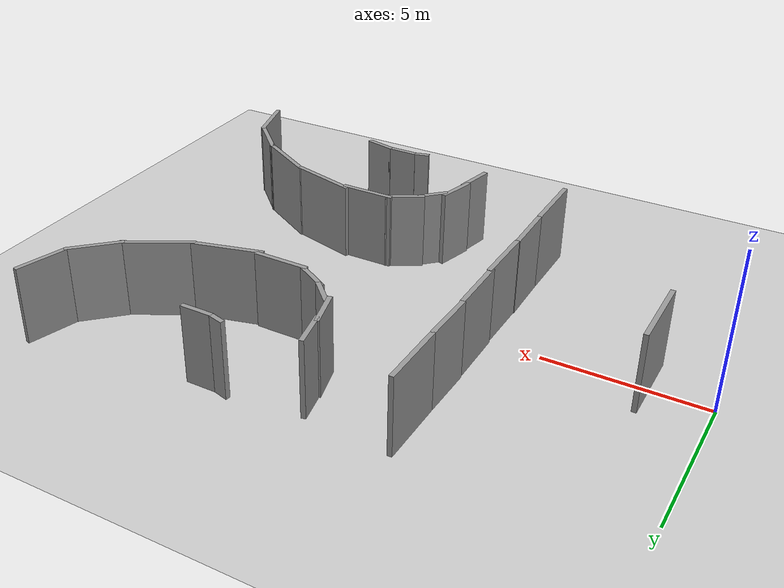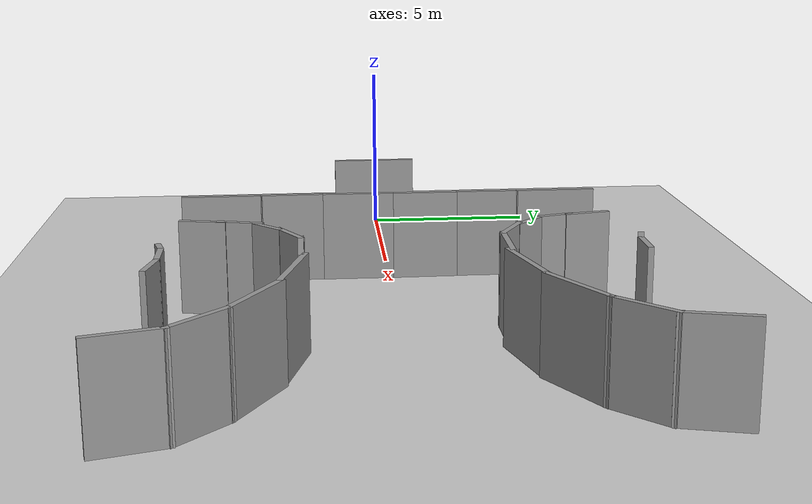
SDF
<sdf version="1.6">
 <world name="default">
  <model name="ground_plane">
   <static>1</static>
   <link name="link">
    <collision name="collision">
     <geometry><plane><normal>0 0 1</normal><size>100 100</size></plane></geometry>
     <surface><friction><ode><mu>100</mu><mu2>50</mu2></ode></friction></surface>
    </collision>
    <visual name="visual">
     <cast_shadows>0</cast_shadows>
     <geometry><plane><normal>0 0 1</normal><size>100 100</size></plane></geometry>
     <material>
      <script><uri>file://media/materials/scripts/gazebo.material</uri><name>Gazebo/Grey</name></script>
     </material>
    </visual>
   </link>
  </model>
  <model name="c-Snail_v3">
   <link name="Wall_14">
    <pose>-5.26527 -5.8787 0 0 0 -0.010393</pose>
    <visual name="Wall_14_Visual">
     <pose>0 0 1.25 0 -0 0</pose>
     <geometry><box><size>2 0.15 2.5</size></box></geometry>
     <material>
      <script><uri>file://media/materials/scripts/gazebo.material</uri><name>Gazebo/Grey</name></script>
      <ambient>1 1 1 1</ambient>
     </material>
     <meta><layer>0</layer></meta>
    </visual>
    <collision name="Wall_14_Collision">
     <pose>0 0 1.25 0 -0 0</pose>
     <geometry><box><size>2 0.15 2.5</size></box></geometry>
     <surface>
      <friction>
       <ode><mu>1</mu><mu2>1</mu2><fdir1>0 0 0</fdir1><slip1>0</slip1><slip2>0</slip2></ode>
       <torsional>
        <coefficient>1</coefficient>
        <patch_radius>0</patch_radius>
        <surface_radius>0</surface_radius>
        <use_patch_radius>1</use_patch_radius>
        <ode><slip>0</slip></ode>
       </torsional>
      </friction>
      <bounce><restitution_coefficient>0</restitution_coefficient><threshold>1e+06</threshold></bounce>
      <contact>
       <collide_without_contact>0</collide_without_contact>
       <collide_without_contact_bitmask>1</collide_without_contact_bitmask>
       <collide_bitmask>1</collide_bitmask>
       <ode>
        <soft_cfm>0</soft_cfm>
        <soft_erp>0.2</soft_erp>
        <kp>1e+13</kp>
        <kd>1</kd>
        <max_vel>0.01</max_vel>
        <min_depth>0</min_depth>
       </ode>
       <bullet>
        <split_impulse>1</split_impulse>
        <split_impulse_penetration_threshold>-0.01</split_impulse_penetration_threshold>
        <soft_cfm>0</soft_cfm>
        <soft_erp>0.2</soft_erp>
        <kp>1e+13</kp>
        <kd>1</kd>
       </bullet>
      </contact>
     </surface>
    </collision>
   </link>
   <link name="Wall_15">
    <pose>-3.40013 -5.89719 0 0 -0 0.01305</pose>
    <visual name="Wall_15_Visual">
     <pose>0 0 1.25 0 -0 0</pose>
     <geometry><box><size>1.77919 0.15 2.5</size></box></geometry>
     <material>
      <script><uri>file://media/materials/scripts/gazebo.material</uri><name>Gazebo/Grey</name></script>
      <ambient>1 1 1 1</ambient>
     </material>
     <meta><layer>0</layer></meta>
    </visual>
    <collision name="Wall_15_Collision">
     <pose>0 0 1.25 0 -0 0</pose>
     <geometry><box><size>1.77919 0.15 2.5</size></box></geometry>
     <surface>
      <friction>
       <ode><mu>1</mu><mu2>1</mu2><fdir1>0 0 0</fdir1><slip1>0</slip1><slip2>0</slip2></ode>
       <torsional>
        <coefficient>1</coefficient>
        <patch_radius>0</patch_radius>
        <surface_radius>0</surface_radius>
        <use_patch_radius>1</use_patch_radius>
        <ode><slip>0</slip></ode>
       </torsional>
      </friction>
      <bounce><restitution_coefficient>0</restitution_coefficient><threshold>1e+06</threshold></bounce>
      <contact>
       <collide_without_contact>0</collide_without_contact>
       <collide_without_contact_bitmask>1</collide_without_contact_bitmask>
       <collide_bitmask>1</collide_bitmask>
       <ode>
        <soft_cfm>0</soft_cfm>
        <soft_erp>0.2</soft_erp>
        <kp>1e+13</kp>
        <kd>1</kd>
        <max_vel>0.01</max_vel>
        <min_depth>0</min_depth>
       </ode>
       <bullet>
        <split_impulse>1</split_impulse>
        <split_impulse_penetration_threshold>-0.01</split_impulse_penetration_threshold>
        <soft_cfm>0</soft_cfm>
        <soft_erp>0.2</soft_erp>
        <kp>1e+13</kp>
        <kd>1</kd>
       </bullet>
      </contact>
     </surface>
    </collision>
   </link>
   <link name="Wall_18">
    <pose>-1.42808 -5.88586 0 0 -0 0</pose>
    <visual name="Wall_18_Visual">
     <pose>0 0 1.25 0 -0 0</pose>
     <geometry><box><size>2.25 0.15 2.5</size></box></geometry>
     <material>
      <script><uri>file://media/materials/scripts/gazebo.material</uri><name>Gazebo/Grey</name></script>
      <ambient>1 1 1 1</ambient>
     </material>
     <meta><layer>0</layer></meta>
    </visual>
    <collision name="Wall_18_Collision">
     <pose>0 0 1.25 0 -0 0</pose>
     <geometry><box><size>2.25 0.15 2.5</size></box></geometry>
     <surface>
      <friction>
       <ode><mu>1</mu><mu2>1</mu2><fdir1>0 0 0</fdir1><slip1>0</slip1><slip2>0</slip2></ode>
       <torsional>
        <coefficient>1</coefficient>
        <patch_radius>0</patch_radius>
        <surface_radius>0</surface_radius>
        <use_patch_radius>1</use_patch_radius>
        <ode><slip>0</slip></ode>
       </torsional>
      </friction>
      <bounce><restitution_coefficient>0</restitution_coefficient><threshold>1e+06</threshold></bounce>
      <contact>
       <collide_without_contact>0</collide_without_contact>
       <collide_without_contact_bitmask>1</collide_without_contact_bitmask>
       <collide_bitmask>1</collide_bitmask>
       <ode>
        <soft_cfm>0</soft_cfm>
        <soft_erp>0.2</soft_erp>
        <kp>1e+13</kp>
        <kd>1</kd>
        <max_vel>0.01</max_vel>
        <min_depth>0</min_depth>
       </ode>
       <bullet>
        <split_impulse>1</split_impulse>
        <split_impulse_penetration_threshold>-0.01</split_impulse_penetration_threshold>
        <soft_cfm>0</soft_cfm>
        <soft_erp>0.2</soft_erp>
        <kp>1e+13</kp>
        <kd>1</kd>
       </bullet>
      </contact>
     </surface>
    </collision>
   </link>
   <link name="Wall_37">
    <pose>-0.255959 5.49815 0 0 0 -2.87979</pose>
    <visual name="Wall_37_Visual">
     <pose>0 0 1.25 0 -0 0</pose>
     <geometry><box><size>1.75 0.15 2.5</size></box></geometry>
     <material>
      <script><uri>file://media/materials/scripts/gazebo.material</uri><name>Gazebo/Grey</name></script>
      <ambient>1 1 1 1</ambient>
     </material>
     <meta><layer>0</layer></meta>
    </visual>
    <collision name="Wall_37_Collision">
     <pose>0 0 1.25 0 -0 0</pose>
     <geometry><box><size>1.75 0.15 2.5</size></box></geometry>
     <surface>
      <friction>
       <ode><mu>1</mu><mu2>1</mu2><fdir1>0 0 0</fdir1><slip1>0</slip1><slip2>0</slip2></ode>
       <torsional>
        <coefficient>1</coefficient>
        <patch_radius>0</patch_radius>
        <surface_radius>0</surface_radius>
        <use_patch_radius>1</use_patch_radius>
        <ode><slip>0</slip></ode>
       </torsional>
      </friction>
      <bounce><restitution_coefficient>0</restitution_coefficient><threshold>1e+06</threshold></bounce>
      <contact>
       <collide_without_contact>0</collide_without_contact>
       <collide_without_contact_bitmask>1</collide_without_contact_bitmask>
       <collide_bitmask>1</collide_bitmask>
       <ode>
        <soft_cfm>0</soft_cfm>
        <soft_erp>0.2</soft_erp>
        <kp>1e+13</kp>
        <kd>1</kd>
        <max_vel>0.01</max_vel>
        <min_depth>0</min_depth>
       </ode>
       <bullet>
        <split_impulse>1</split_impulse>
        <split_impulse_penetration_threshold>-0.01</split_impulse_penetration_threshold>
        <soft_cfm>0</soft_cfm>
        <soft_erp>0.2</soft_erp>
        <kp>1e+13</kp>
        <kd>1</kd>
       </bullet>
      </contact>
     </surface>
    </collision>
   </link>
   <link name="Wall_38">
    <pose>-1.59438 4.72541 0 0 0 -2.35619</pose>
    <visual name="Wall_38_Visual">
     <pose>0 0 1.25 0 -0 0</pose>
     <geometry><box><size>1.75 0.15 2.5</size></box></geometry>
     <material>
      <script><uri>file://media/materials/scripts/gazebo.material</uri><name>Gazebo/Grey</name></script>
      <ambient>1 1 1 1</ambient>
     </material>
     <meta><layer>0</layer></meta>
    </visual>
    <collision name="Wall_38_Collision">
     <pose>0 0 1.25 0 -0 0</pose>
     <geometry><box><size>1.75 0.15 2.5</size></box></geometry>
     <surface>
      <friction>
       <ode><mu>1</mu><mu2>1</mu2><fdir1>0 0 0</fdir1><slip1>0</slip1><slip2>0</slip2></ode>
       <torsional>
        <coefficient>1</coefficient>
        <patch_radius>0</patch_radius>
        <surface_radius>0</surface_radius>
        <use_patch_radius>1</use_patch_radius>
        <ode><slip>0</slip></ode>
       </torsional>
      </friction>
      <bounce><restitution_coefficient>0</restitution_coefficient><threshold>1e+06</threshold></bounce>
      <contact>
       <collide_without_contact>0</collide_without_contact>
       <collide_without_contact_bitmask>1</collide_without_contact_bitmask>
       <collide_bitmask>1</collide_bitmask>
       <ode>
        <soft_cfm>0</soft_cfm>
        <soft_erp>0.2</soft_erp>
        <kp>1e+13</kp>
        <kd>1</kd>
        <max_vel>0.01</max_vel>
        <min_depth>0</min_depth>
       </ode>
       <bullet>
        <split_impulse>1</split_impulse>
        <split_impulse_penetration_threshold>-0.01</split_impulse_penetration_threshold>
        <soft_cfm>0</soft_cfm>
        <soft_erp>0.2</soft_erp>
        <kp>1e+13</kp>
        <kd>1</kd>
       </bullet>
      </contact>
     </surface>
    </collision>
   </link>
   <link name="Wall_39">
    <pose>-2.68507 3.2504 0 0 0 -2.0944</pose>
    <visual name="Wall_39_Visual">
     <pose>0 0 1.25 0 -0 0</pose>
     <geometry><box><size>2.25 0.15 2.5</size></box></geometry>
     <material>
      <script><uri>file://media/materials/scripts/gazebo.material</uri><name>Gazebo/Grey</name></script>
      <ambient>1 1 1 1</ambient>
     </material>
     <meta><layer>0</layer></meta>
    </visual>
    <collision name="Wall_39_Collision">
     <pose>0 0 1.25 0 -0 0</pose>
     <geometry><box><size>2.25 0.15 2.5</size></box></geometry>
     <surface>
      <friction>
       <ode><mu>1</mu><mu2>1</mu2><fdir1>0 0 0</fdir1><slip1>0</slip1><slip2>0</slip2></ode>
       <torsional>
        <coefficient>1</coefficient>
        <patch_radius>0</patch_radius>
        <surface_radius>0</surface_radius>
        <use_patch_radius>1</use_patch_radius>
        <ode><slip>0</slip></ode>
       </torsional>
      </friction>
      <bounce><restitution_coefficient>0</restitution_coefficient><threshold>1e+06</threshold></bounce>
      <contact>
       <collide_without_contact>0</collide_without_contact>
       <collide_without_contact_bitmask>1</collide_without_contact_bitmask>
       <collide_bitmask>1</collide_bitmask>
       <ode>
        <soft_cfm>0</soft_cfm>
        <soft_erp>0.2</soft_erp>
        <kp>1e+13</kp>
        <kd>1</kd>
        <max_vel>0.01</max_vel>
        <min_depth>0</min_depth>
       </ode>
       <bullet>
        <split_impulse>1</split_impulse>
        <split_impulse_penetration_threshold>-0.01</split_impulse_penetration_threshold>
        <soft_cfm>0</soft_cfm>
        <soft_erp>0.2</soft_erp>
        <kp>1e+13</kp>
        <kd>1</kd>
       </bullet>
      </contact>
     </surface>
    </collision>
   </link>
   <link name="Wall_40">
    <pose>-3.4661 1.30505 0 0 0 -1.8326</pose>
    <visual name="Wall_40_Visual">
     <pose>0 0 1.25 0 -0 0</pose>
     <geometry><box><size>2.25 0.15 2.5</size></box></geometry>
     <material>
      <script><uri>file://media/materials/scripts/gazebo.material</uri><name>Gazebo/Grey</name></script>
      <ambient>1 1 1 1</ambient>
     </material>
     <meta><layer>0</layer></meta>
    </visual>
    <collision name="Wall_40_Collision">
     <pose>0 0 1.25 0 -0 0</pose>
     <geometry><box><size>2.25 0.15 2.5</size></box></geometry>
     <surface>
      <friction>
       <ode><mu>1</mu><mu2>1</mu2><fdir1>0 0 0</fdir1><slip1>0</slip1><slip2>0</slip2></ode>
       <torsional>
        <coefficient>1</coefficient>
        <patch_radius>0</patch_radius>
        <surface_radius>0</surface_radius>
        <use_patch_radius>1</use_patch_radius>
        <ode><slip>0</slip></ode>
       </torsional>
      </friction>
      <bounce><restitution_coefficient>0</restitution_coefficient><threshold>1e+06</threshold></bounce>
      <contact>
       <collide_without_contact>0</collide_without_contact>
       <collide_without_contact_bitmask>1</collide_without_contact_bitmask>
       <collide_bitmask>1</collide_bitmask>
       <ode>
        <soft_cfm>0</soft_cfm>
        <soft_erp>0.2</soft_erp>
        <kp>1e+13</kp>
        <kd>1</kd>
        <max_vel>0.01</max_vel>
        <min_depth>0</min_depth>
       </ode>
       <bullet>
        <split_impulse>1</split_impulse>
        <split_impulse_penetration_threshold>-0.01</split_impulse_penetration_threshold>
        <soft_cfm>0</soft_cfm>
        <soft_erp>0.2</soft_erp>
        <kp>1e+13</kp>
        <kd>1</kd>
       </bullet>
      </contact>
     </surface>
    </collision>
   </link>
   <link name="Wall_41">
    <pose>-3.63808 -0.467586 0 0 0 -1.5708</pose>
    <visual name="Wall_41_Visual">
     <pose>0 0 1.25 0 -0 0</pose>
     <geometry><box><size>1.75 0.15 2.5</size></box></geometry>
     <material>
      <script><uri>file://media/materials/scripts/gazebo.material</uri><name>Gazebo/Grey</name></script>
      <ambient>1 1 1 1</ambient>
     </material>
     <meta><layer>0</layer></meta>
    </visual>
    <collision name="Wall_41_Collision">
     <pose>0 0 1.25 0 -0 0</pose>
     <geometry><box><size>1.75 0.15 2.5</size></box></geometry>
     <surface>
      <friction>
       <ode><mu>1</mu><mu2>1</mu2><fdir1>0 0 0</fdir1><slip1>0</slip1><slip2>0</slip2></ode>
       <torsional>
        <coefficient>1</coefficient>
        <patch_radius>0</patch_radius>
        <surface_radius>0</surface_radius>
        <use_patch_radius>1</use_patch_radius>
        <ode><slip>0</slip></ode>
       </torsional>
      </friction>
      <bounce><restitution_coefficient>0</restitution_coefficient><threshold>1e+06</threshold></bounce>
      <contact>
       <collide_without_contact>0</collide_without_contact>
       <collide_without_contact_bitmask>1</collide_without_contact_bitmask>
       <collide_bitmask>1</collide_bitmask>
       <ode>
        <soft_cfm>0</soft_cfm>
        <soft_erp>0.2</soft_erp>
        <kp>1e+13</kp>
        <kd>1</kd>
        <max_vel>0.01</max_vel>
        <min_depth>0</min_depth>
       </ode>
       <bullet>
        <split_impulse>1</split_impulse>
        <split_impulse_penetration_threshold>-0.01</split_impulse_penetration_threshold>
        <soft_cfm>0</soft_cfm>
        <soft_erp>0.2</soft_erp>
        <kp>1e+13</kp>
        <kd>1</kd>
       </bullet>
      </contact>
     </surface>
    </collision>
   </link>
   <link name="Wall_42">
    <pose>-3.35514 -1.67487 0 0 0 -1.0472</pose>
    <visual name="Wall_42_Visual">
     <pose>0 0 1.25 0 -0 0</pose>
     <geometry><box><size>1.25 0.15 2.5</size></box></geometry>
     <material>
      <script><uri>file://media/materials/scripts/gazebo.material</uri><name>Gazebo/Grey</name></script>
      <ambient>1 1 1 1</ambient>
     </material>
     <meta><layer>0</layer></meta>
    </visual>
    <collision name="Wall_42_Collision">
     <pose>0 0 1.25 0 -0 0</pose>
     <geometry><box><size>1.25 0.15 2.5</size></box></geometry>
     <surface>
      <friction>
       <ode><mu>1</mu><mu2>1</mu2><fdir1>0 0 0</fdir1><slip1>0</slip1><slip2>0</slip2></ode>
       <torsional>
        <coefficient>1</coefficient>
        <patch_radius>0</patch_radius>
        <surface_radius>0</surface_radius>
        <use_patch_radius>1</use_patch_radius>
        <ode><slip>0</slip></ode>
       </torsional>
      </friction>
      <bounce><restitution_coefficient>0</restitution_coefficient><threshold>1e+06</threshold></bounce>
      <contact>
       <collide_without_contact>0</collide_without_contact>
       <collide_without_contact_bitmask>1</collide_without_contact_bitmask>
       <collide_bitmask>1</collide_bitmask>
       <ode>
        <soft_cfm>0</soft_cfm>
        <soft_erp>0.2</soft_erp>
        <kp>1e+13</kp>
        <kd>1</kd>
        <max_vel>0.01</max_vel>
        <min_depth>0</min_depth>
       </ode>
       <bullet>
        <split_impulse>1</split_impulse>
        <split_impulse_penetration_threshold>-0.01</split_impulse_penetration_threshold>
        <soft_cfm>0</soft_cfm>
        <soft_erp>0.2</soft_erp>
        <kp>1e+13</kp>
        <kd>1</kd>
       </bullet>
      </contact>
     </surface>
    </collision>
   </link>
   <link name="Wall_43">
    <pose>-2.78966 -2.37241 0 0 0 -0.785398</pose>
    <visual name="Wall_43_Visual">
     <pose>0 0 1.25 0 -0 0</pose>
     <geometry><box><size>1 0.15 2.5</size></box></geometry>
     <material>
      <script><uri>file://media/materials/scripts/gazebo.material</uri><name>Gazebo/Grey</name></script>
      <ambient>1 1 1 1</ambient>
     </material>
     <meta><layer>0</layer></meta>
    </visual>
    <collision name="Wall_43_Collision">
     <pose>0 0 1.25 0 -0 0</pose>
     <geometry><box><size>1 0.15 2.5</size></box></geometry>
     <surface>
      <friction>
       <ode><mu>1</mu><mu2>1</mu2><fdir1>0 0 0</fdir1><slip1>0</slip1><slip2>0</slip2></ode>
       <torsional>
        <coefficient>1</coefficient>
        <patch_radius>0</patch_radius>
        <surface_radius>0</surface_radius>
        <use_patch_radius>1</use_patch_radius>
        <ode><slip>0</slip></ode>
       </torsional>
      </friction>
      <bounce><restitution_coefficient>0</restitution_coefficient><threshold>1e+06</threshold></bounce>
      <contact>
       <collide_without_contact>0</collide_without_contact>
       <collide_without_contact_bitmask>1</collide_without_contact_bitmask>
       <collide_bitmask>1</collide_bitmask>
       <ode>
        <soft_cfm>0</soft_cfm>
        <soft_erp>0.2</soft_erp>
        <kp>1e+13</kp>
        <kd>1</kd>
        <max_vel>0.01</max_vel>
        <min_depth>0</min_depth>
       </ode>
       <bullet>
        <split_impulse>1</split_impulse>
        <split_impulse_penetration_threshold>-0.01</split_impulse_penetration_threshold>
        <soft_cfm>0</soft_cfm>
        <soft_erp>0.2</soft_erp>
        <kp>1e+13</kp>
        <kd>1</kd>
       </bullet>
      </contact>
     </surface>
    </collision>
   </link>
   <link name="Wall_44">
    <pose>-2.07399 -2.86351 0 0 0 -0.261799</pose>
    <visual name="Wall_44_Visual">
     <pose>0 0 1.25 0 -0 0</pose>
     <geometry><box><size>1.25 0.15 2.5</size></box></geometry>
     <material>
      <script><uri>file://media/materials/scripts/gazebo.material</uri><name>Gazebo/Grey</name></script>
      <ambient>1 1 1 1</ambient>
     </material>
     <meta><layer>0</layer></meta>
    </visual>
    <collision name="Wall_44_Collision">
     <pose>0 0 1.25 0 -0 0</pose>
     <geometry><box><size>1.25 0.15 2.5</size></box></geometry>
     <surface>
      <friction>
       <ode><mu>1</mu><mu2>1</mu2><fdir1>0 0 0</fdir1><slip1>0</slip1><slip2>0</slip2></ode>
       <torsional>
        <coefficient>1</coefficient>
        <patch_radius>0</patch_radius>
        <surface_radius>0</surface_radius>
        <use_patch_radius>1</use_patch_radius>
        <ode><slip>0</slip></ode>
       </torsional>
      </friction>
      <bounce><restitution_coefficient>0</restitution_coefficient><threshold>1e+06</threshold></bounce>
      <contact>
       <collide_without_contact>0</collide_without_contact>
       <collide_without_contact_bitmask>1</collide_without_contact_bitmask>
       <collide_bitmask>1</collide_bitmask>
       <ode>
        <soft_cfm>0</soft_cfm>
        <soft_erp>0.2</soft_erp>
        <kp>1e+13</kp>
        <kd>1</kd>
        <max_vel>0.01</max_vel>
        <min_depth>0</min_depth>
       </ode>
       <bullet>
        <split_impulse>1</split_impulse>
        <split_impulse_penetration_threshold>-0.01</split_impulse_penetration_threshold>
        <soft_cfm>0</soft_cfm>
        <soft_erp>0.2</soft_erp>
        <kp>1e+13</kp>
        <kd>1</kd>
       </bullet>
      </contact>
     </surface>
    </collision>
   </link>
   <link name="Wall_45">
    <pose>-1.09897 -3.05219 0 0 0 -0.205287</pose>
    <visual name="Wall_45_Visual">
     <pose>0 0 1.25 0 -0 0</pose>
     <geometry><box><size>1.25 0.15 2.5</size></box></geometry>
     <material>
      <script><uri>file://media/materials/scripts/gazebo.material</uri><name>Gazebo/Grey</name></script>
      <ambient>1 1 1 1</ambient>
     </material>
     <meta><layer>0</layer></meta>
    </visual>
    <collision name="Wall_45_Collision">
     <pose>0 0 1.25 0 -0 0</pose>
     <geometry><box><size>1.25 0.15 2.5</size></box></geometry>
     <surface>
      <friction>
       <ode><mu>1</mu><mu2>1</mu2><fdir1>0 0 0</fdir1><slip1>0</slip1><slip2>0</slip2></ode>
       <torsional>
        <coefficient>1</coefficient>
        <patch_radius>0</patch_radius>
        <surface_radius>0</surface_radius>
        <use_patch_radius>1</use_patch_radius>
        <ode><slip>0</slip></ode>
       </torsional>
      </friction>
      <bounce><restitution_coefficient>0</restitution_coefficient><threshold>1e+06</threshold></bounce>
      <contact>
       <collide_without_contact>0</collide_without_contact>
       <collide_without_contact_bitmask>1</collide_without_contact_bitmask>
       <collide_bitmask>1</collide_bitmask>
       <ode>
        <soft_cfm>0</soft_cfm>
        <soft_erp>0.2</soft_erp>
        <kp>1e+13</kp>
        <kd>1</kd>
        <max_vel>0.01</max_vel>
        <min_depth>0</min_depth>
       </ode>
       <bullet>
        <split_impulse>1</split_impulse>
        <split_impulse_penetration_threshold>-0.01</split_impulse_penetration_threshold>
        <soft_cfm>0</soft_cfm>
        <soft_erp>0.2</soft_erp>
        <kp>1e+13</kp>
        <kd>1</kd>
       </bullet>
      </contact>
     </surface>
    </collision>
   </link>
   <link name="Wall_66">
    <pose>-0.21942 0.921775 0 0 0 -1.79109</pose>
    <visual name="Wall_66_Visual">
     <pose>0 0 1.25 0 -0 0</pose>
     <geometry><box><size>1 0.15 2.5</size></box></geometry>
     <material>
      <script><uri>file://media/materials/scripts/gazebo.material</uri><name>Gazebo/Grey</name></script>
      <ambient>1 1 1 1</ambient>
     </material>
     <meta><layer>0</layer></meta>
    </visual>
    <collision name="Wall_66_Collision">
     <pose>0 0 1.25 0 -0 0</pose>
     <geometry><box><size>1 0.15 2.5</size></box></geometry>
     <surface>
      <friction>
       <ode><mu>1</mu><mu2>1</mu2><fdir1>0 0 0</fdir1><slip1>0</slip1><slip2>0</slip2></ode>
       <torsional>
        <coefficient>1</coefficient>
        <patch_radius>0</patch_radius>
        <surface_radius>0</surface_radius>
        <use_patch_radius>1</use_patch_radius>
        <ode><slip>0</slip></ode>
       </torsional>
      </friction>
      <bounce><restitution_coefficient>0</restitution_coefficient><threshold>1e+06</threshold></bounce>
      <contact>
       <collide_without_contact>0</collide_without_contact>
       <collide_without_contact_bitmask>1</collide_without_contact_bitmask>
       <collide_bitmask>1</collide_bitmask>
       <ode>
        <soft_cfm>0</soft_cfm>
        <soft_erp>0.2</soft_erp>
        <kp>1e+13</kp>
        <kd>1</kd>
        <max_vel>0.01</max_vel>
        <min_depth>0</min_depth>
       </ode>
       <bullet>
        <split_impulse>1</split_impulse>
        <split_impulse_penetration_threshold>-0.01</split_impulse_penetration_threshold>
        <soft_cfm>0</soft_cfm>
        <soft_erp>0.2</soft_erp>
        <kp>1e+13</kp>
        <kd>1</kd>
       </bullet>
      </contact>
     </surface>
    </collision>
   </link>
   <link name="Wall_67">
    <pose>-0.316141 0.005293 0 0 0 -1.5708</pose>
    <visual name="Wall_67_Visual">
     <pose>0 0 1.25 0 -0 0</pose>
     <geometry><box><size>1 0.15 2.5</size></box></geometry>
     <material>
      <script><uri>file://media/materials/scripts/gazebo.material</uri><name>Gazebo/Grey</name></script>
      <ambient>1 1 1 1</ambient>
     </material>
     <meta><layer>0</layer></meta>
    </visual>
    <collision name="Wall_67_Collision">
     <pose>0 0 1.25 0 -0 0</pose>
     <geometry><box><size>1 0.15 2.5</size></box></geometry>
     <surface>
      <friction>
       <ode><mu>1</mu><mu2>1</mu2><fdir1>0 0 0</fdir1><slip1>0</slip1><slip2>0</slip2></ode>
       <torsional>
        <coefficient>1</coefficient>
        <patch_radius>0</patch_radius>
        <surface_radius>0</surface_radius>
        <use_patch_radius>1</use_patch_radius>
        <ode><slip>0</slip></ode>
       </torsional>
      </friction>
      <bounce><restitution_coefficient>0</restitution_coefficient><threshold>1e+06</threshold></bounce>
      <contact>
       <collide_without_contact>0</collide_without_contact>
       <collide_without_contact_bitmask>1</collide_without_contact_bitmask>
       <collide_bitmask>1</collide_bitmask>
       <ode>
        <soft_cfm>0</soft_cfm>
        <soft_erp>0.2</soft_erp>
        <kp>1e+13</kp>
        <kd>1</kd>
        <max_vel>0.01</max_vel>
        <min_depth>0</min_depth>
       </ode>
       <bullet>
        <split_impulse>1</split_impulse>
        <split_impulse_penetration_threshold>-0.01</split_impulse_penetration_threshold>
        <soft_cfm>0</soft_cfm>
        <soft_erp>0.2</soft_erp>
        <kp>1e+13</kp>
        <kd>1</kd>
       </bullet>
      </contact>
     </surface>
    </collision>
   </link>
   <link name="Wall_68">
    <pose>-0.252403 -0.700153 0 0 0 -1.309</pose>
    <visual name="Wall_68_Visual">
     <pose>0 0 1.25 0 -0 0</pose>
     <geometry><box><size>0.5 0.15 2.5</size></box></geometry>
     <material>
      <script><uri>file://media/materials/scripts/gazebo.material</uri><name>Gazebo/Grey</name></script>
      <ambient>1 1 1 1</ambient>
     </material>
     <meta><layer>0</layer></meta>
    </visual>
    <collision name="Wall_68_Collision">
     <pose>0 0 1.25 0 -0 0</pose>
     <geometry><box><size>0.5 0.15 2.5</size></box></geometry>
     <surface>
      <friction>
       <ode><mu>1</mu><mu2>1</mu2><fdir1>0 0 0</fdir1><slip1>0</slip1><slip2>0</slip2></ode>
       <torsional>
        <coefficient>1</coefficient>
        <patch_radius>0</patch_radius>
        <surface_radius>0</surface_radius>
        <use_patch_radius>1</use_patch_radius>
        <ode><slip>0</slip></ode>
       </torsional>
      </friction>
      <bounce><restitution_coefficient>0</restitution_coefficient><threshold>1e+06</threshold></bounce>
      <contact>
       <collide_without_contact>0</collide_without_contact>
       <collide_without_contact_bitmask>1</collide_without_contact_bitmask>
       <collide_bitmask>1</collide_bitmask>
       <ode>
        <soft_cfm>0</soft_cfm>
        <soft_erp>0.2</soft_erp>
        <kp>1e+13</kp>
        <kd>1</kd>
        <max_vel>0.01</max_vel>
        <min_depth>0</min_depth>
       </ode>
       <bullet>
        <split_impulse>1</split_impulse>
        <split_impulse_penetration_threshold>-0.01</split_impulse_penetration_threshold>
        <soft_cfm>0</soft_cfm>
        <soft_erp>0.2</soft_erp>
        <kp>1e+13</kp>
        <kd>1</kd>
       </bullet>
      </contact>
     </surface>
    </collision>
   </link>
   <static>1</static>
   <pose>12.5718 -6.1346 0 0 0 -1.57044</pose>
  </model>
  <model name="c-Snail_v3_clone">
   <link name="Wall_14">
    <pose>-5.26527 -5.8787 0 0 0 -0.010393</pose>
    <visual name="Wall_14_Visual">
     <pose>0 0 1.25 0 -0 0</pose>
     <geometry><box><size>2 0.15 2.5</size></box></geometry>
     <material>
      <script><uri>file://media/materials/scripts/gazebo.material</uri><name>Gazebo/Grey</name></script>
      <ambient>1 1 1 1</ambient>
     </material>
     <meta><layer>0</layer></meta>
    </visual>
    <collision name="Wall_14_Collision">
     <pose>0 0 1.25 0 -0 0</pose>
     <geometry><box><size>2 0.15 2.5</size></box></geometry>
     <surface>
      <friction>
       <ode><mu>1</mu><mu2>1</mu2><fdir1>0 0 0</fdir1><slip1>0</slip1><slip2>0</slip2></ode>
       <torsional>
        <coefficient>1</coefficient>
        <patch_radius>0</patch_radius>
        <surface_radius>0</surface_radius>
        <use_patch_radius>1</use_patch_radius>
        <ode><slip>0</slip></ode>
       </torsional>
      </friction>
      <bounce><restitution_coefficient>0</restitution_coefficient><threshold>1e+06</threshold></bounce>
      <contact>
       <collide_without_contact>0</collide_without_contact>
       <collide_without_contact_bitmask>1</collide_without_contact_bitmask>
       <collide_bitmask>1</collide_bitmask>
       <ode>
        <soft_cfm>0</soft_cfm>
        <soft_erp>0.2</soft_erp>
        <kp>1e+13</kp>
        <kd>1</kd>
        <max_vel>0.01</max_vel>
        <min_depth>0</min_depth>
       </ode>
       <bullet>
        <split_impulse>1</split_impulse>
        <split_impulse_penetration_threshold>-0.01</split_impulse_penetration_threshold>
        <soft_cfm>0</soft_cfm>
        <soft_erp>0.2</soft_erp>
        <kp>1e+13</kp>
        <kd>1</kd>
       </bullet>
      </contact>
     </surface>
    </collision>
   </link>
   <link name="Wall_15">
    <pose>-3.40013 -5.89719 0 0 -0 0.01305</pose>
    <visual name="Wall_15_Visual">
     <pose>0 0 1.25 0 -0 0</pose>
     <geometry><box><size>1.77919 0.15 2.5</size></box></geometry>
     <material>
      <script><uri>file://media/materials/scripts/gazebo.material</uri><name>Gazebo/Grey</name></script>
      <ambient>1 1 1 1</ambient>
     </material>
     <meta><layer>0</layer></meta>
    </visual>
    <collision name="Wall_15_Collision">
     <pose>0 0 1.25 0 -0 0</pose>
     <geometry><box><size>1.77919 0.15 2.5</size></box></geometry>
     <surface>
      <friction>
       <ode><mu>1</mu><mu2>1</mu2><fdir1>0 0 0</fdir1><slip1>0</slip1><slip2>0</slip2></ode>
       <torsional>
        <coefficient>1</coefficient>
        <patch_radius>0</patch_radius>
        <surface_radius>0</surface_radius>
        <use_patch_radius>1</use_patch_radius>
        <ode><slip>0</slip></ode>
       </torsional>
      </friction>
      <bounce><restitution_coefficient>0</restitution_coefficient><threshold>1e+06</threshold></bounce>
      <contact>
       <collide_without_contact>0</collide_without_contact>
       <collide_without_contact_bitmask>1</collide_without_contact_bitmask>
       <collide_bitmask>1</collide_bitmask>
       <ode>
        <soft_cfm>0</soft_cfm>
        <soft_erp>0.2</soft_erp>
        <kp>1e+13</kp>
        <kd>1</kd>
        <max_vel>0.01</max_vel>
        <min_depth>0</min_depth>
       </ode>
       <bullet>
        <split_impulse>1</split_impulse>
        <split_impulse_penetration_threshold>-0.01</split_impulse_penetration_threshold>
        <soft_cfm>0</soft_cfm>
        <soft_erp>0.2</soft_erp>
        <kp>1e+13</kp>
        <kd>1</kd>
       </bullet>
      </contact>
     </surface>
    </collision>
   </link>
   <link name="Wall_18">
    <pose>-1.42808 -5.88586 0 0 -0 0</pose>
    <visual name="Wall_18_Visual">
     <pose>0 0 1.25 0 -0 0</pose>
     <geometry><box><size>2.25 0.15 2.5</size></box></geometry>
     <material>
      <script><uri>file://media/materials/scripts/gazebo.material</uri><name>Gazebo/Grey</name></script>
      <ambient>1 1 1 1</ambient>
     </material>
     <meta><layer>0</layer></meta>
    </visual>
    <collision name="Wall_18_Collision">
     <pose>0 0 1.25 0 -0 0</pose>
     <geometry><box><size>2.25 0.15 2.5</size></box></geometry>
     <surface>
      <friction>
       <ode><mu>1</mu><mu2>1</mu2><fdir1>0 0 0</fdir1><slip1>0</slip1><slip2>0</slip2></ode>
       <torsional>
        <coefficient>1</coefficient>
        <patch_radius>0</patch_radius>
        <surface_radius>0</surface_radius>
        <use_patch_radius>1</use_patch_radius>
        <ode><slip>0</slip></ode>
       </torsional>
      </friction>
      <bounce><restitution_coefficient>0</restitution_coefficient><threshold>1e+06</threshold></bounce>
      <contact>
       <collide_without_contact>0</collide_without_contact>
       <collide_without_contact_bitmask>1</collide_without_contact_bitmask>
       <collide_bitmask>1</collide_bitmask>
       <ode>
        <soft_cfm>0</soft_cfm>
        <soft_erp>0.2</soft_erp>
        <kp>1e+13</kp>
        <kd>1</kd>
        <max_vel>0.01</max_vel>
        <min_depth>0</min_depth>
       </ode>
       <bullet>
        <split_impulse>1</split_impulse>
        <split_impulse_penetration_threshold>-0.01</split_impulse_penetration_threshold>
        <soft_cfm>0</soft_cfm>
        <soft_erp>0.2</soft_erp>
        <kp>1e+13</kp>
        <kd>1</kd>
       </bullet>
      </contact>
     </surface>
    </collision>
   </link>
   <link name="Wall_37">
    <pose>-0.255959 5.49815 0 0 0 -2.87979</pose>
    <visual name="Wall_37_Visual">
     <pose>0 0 1.25 0 -0 0</pose>
     <geometry><box><size>1.75 0.15 2.5</size></box></geometry>
     <material>
      <script><uri>file://media/materials/scripts/gazebo.material</uri><name>Gazebo/Grey</name></script>
      <ambient>1 1 1 1</ambient>
     </material>
     <meta><layer>0</layer></meta>
    </visual>
    <collision name="Wall_37_Collision">
     <pose>0 0 1.25 0 -0 0</pose>
     <geometry><box><size>1.75 0.15 2.5</size></box></geometry>
     <surface>
      <friction>
       <ode><mu>1</mu><mu2>1</mu2><fdir1>0 0 0</fdir1><slip1>0</slip1><slip2>0</slip2></ode>
       <torsional>
        <coefficient>1</coefficient>
        <patch_radius>0</patch_radius>
        <surface_radius>0</surface_radius>
        <use_patch_radius>1</use_patch_radius>
        <ode><slip>0</slip></ode>
       </torsional>
      </friction>
      <bounce><restitution_coefficient>0</restitution_coefficient><threshold>1e+06</threshold></bounce>
      <contact>
       <collide_without_contact>0</collide_without_contact>
       <collide_without_contact_bitmask>1</collide_without_contact_bitmask>
       <collide_bitmask>1</collide_bitmask>
       <ode>
        <soft_cfm>0</soft_cfm>
        <soft_erp>0.2</soft_erp>
        <kp>1e+13</kp>
        <kd>1</kd>
        <max_vel>0.01</max_vel>
        <min_depth>0</min_depth>
       </ode>
       <bullet>
        <split_impulse>1</split_impulse>
        <split_impulse_penetration_threshold>-0.01</split_impulse_penetration_threshold>
        <soft_cfm>0</soft_cfm>
        <soft_erp>0.2</soft_erp>
        <kp>1e+13</kp>
        <kd>1</kd>
       </bullet>
      </contact>
     </surface>
    </collision>
   </link>
   <link name="Wall_38">
    <pose>-1.59438 4.72541 0 0 0 -2.35619</pose>
    <visual name="Wall_38_Visual">
     <pose>0 0 1.25 0 -0 0</pose>
     <geometry><box><size>1.75 0.15 2.5</size></box></geometry>
     <material>
      <script><uri>file://media/materials/scripts/gazebo.material</uri><name>Gazebo/Grey</name></script>
      <ambient>1 1 1 1</ambient>
     </material>
     <meta><layer>0</layer></meta>
    </visual>
    <collision name="Wall_38_Collision">
     <pose>0 0 1.25 0 -0 0</pose>
     <geometry><box><size>1.75 0.15 2.5</size></box></geometry>
     <surface>
      <friction>
       <ode><mu>1</mu><mu2>1</mu2><fdir1>0 0 0</fdir1><slip1>0</slip1><slip2>0</slip2></ode>
       <torsional>
        <coefficient>1</coefficient>
        <patch_radius>0</patch_radius>
        <surface_radius>0</surface_radius>
        <use_patch_radius>1</use_patch_radius>
        <ode><slip>0</slip></ode>
       </torsional>
      </friction>
      <bounce><restitution_coefficient>0</restitution_coefficient><threshold>1e+06</threshold></bounce>
      <contact>
       <collide_without_contact>0</collide_without_contact>
       <collide_without_contact_bitmask>1</collide_without_contact_bitmask>
       <collide_bitmask>1</collide_bitmask>
       <ode>
        <soft_cfm>0</soft_cfm>
        <soft_erp>0.2</soft_erp>
        <kp>1e+13</kp>
        <kd>1</kd>
        <max_vel>0.01</max_vel>
        <min_depth>0</min_depth>
       </ode>
       <bullet>
        <split_impulse>1</split_impulse>
        <split_impulse_penetration_threshold>-0.01</split_impulse_penetration_threshold>
        <soft_cfm>0</soft_cfm>
        <soft_erp>0.2</soft_erp>
        <kp>1e+13</kp>
        <kd>1</kd>
       </bullet>
      </contact>
     </surface>
    </collision>
   </link>
   <link name="Wall_39">
    <pose>-2.68507 3.2504 0 0 0 -2.0944</pose>
    <visual name="Wall_39_Visual">
     <pose>0 0 1.25 0 -0 0</pose>
     <geometry><box><size>2.25 0.15 2.5</size></box></geometry>
     <material>
      <script><uri>file://media/materials/scripts/gazebo.material</uri><name>Gazebo/Grey</name></script>
      <ambient>1 1 1 1</ambient>
     </material>
     <meta><layer>0</layer></meta>
    </visual>
    <collision name="Wall_39_Collision">
     <pose>0 0 1.25 0 -0 0</pose>
     <geometry><box><size>2.25 0.15 2.5</size></box></geometry>
     <surface>
      <friction>
       <ode><mu>1</mu><mu2>1</mu2><fdir1>0 0 0</fdir1><slip1>0</slip1><slip2>0</slip2></ode>
       <torsional>
        <coefficient>1</coefficient>
        <patch_radius>0</patch_radius>
        <surface_radius>0</surface_radius>
        <use_patch_radius>1</use_patch_radius>
        <ode><slip>0</slip></ode>
       </torsional>
      </friction>
      <bounce><restitution_coefficient>0</restitution_coefficient><threshold>1e+06</threshold></bounce>
      <contact>
       <collide_without_contact>0</collide_without_contact>
       <collide_without_contact_bitmask>1</collide_without_contact_bitmask>
       <collide_bitmask>1</collide_bitmask>
       <ode>
        <soft_cfm>0</soft_cfm>
        <soft_erp>0.2</soft_erp>
        <kp>1e+13</kp>
        <kd>1</kd>
        <max_vel>0.01</max_vel>
        <min_depth>0</min_depth>
       </ode>
       <bullet>
        <split_impulse>1</split_impulse>
        <split_impulse_penetration_threshold>-0.01</split_impulse_penetration_threshold>
        <soft_cfm>0</soft_cfm>
        <soft_erp>0.2</soft_erp>
        <kp>1e+13</kp>
        <kd>1</kd>
       </bullet>
      </contact>
     </surface>
    </collision>
   </link>
   <link name="Wall_40">
    <pose>-3.4661 1.30505 0 0 0 -1.8326</pose>
    <visual name="Wall_40_Visual">
     <pose>0 0 1.25 0 -0 0</pose>
     <geometry><box><size>2.25 0.15 2.5</size></box></geometry>
     <material>
      <script><uri>file://media/materials/scripts/gazebo.material</uri><name>Gazebo/Grey</name></script>
      <ambient>1 1 1 1</ambient>
     </material>
     <meta><layer>0</layer></meta>
    </visual>
    <collision name="Wall_40_Collision">
     <pose>0 0 1.25 0 -0 0</pose>
     <geometry><box><size>2.25 0.15 2.5</size></box></geometry>
     <surface>
      <friction>
       <ode><mu>1</mu><mu2>1</mu2><fdir1>0 0 0</fdir1><slip1>0</slip1><slip2>0</slip2></ode>
       <torsional>
        <coefficient>1</coefficient>
        <patch_radius>0</patch_radius>
        <surface_radius>0</surface_radius>
        <use_patch_radius>1</use_patch_radius>
        <ode><slip>0</slip></ode>
       </torsional>
      </friction>
      <bounce><restitution_coefficient>0</restitution_coefficient><threshold>1e+06</threshold></bounce>
      <contact>
       <collide_without_contact>0</collide_without_contact>
       <collide_without_contact_bitmask>1</collide_without_contact_bitmask>
       <collide_bitmask>1</collide_bitmask>
       <ode>
        <soft_cfm>0</soft_cfm>
        <soft_erp>0.2</soft_erp>
        <kp>1e+13</kp>
        <kd>1</kd>
        <max_vel>0.01</max_vel>
        <min_depth>0</min_depth>
       </ode>
       <bullet>
        <split_impulse>1</split_impulse>
        <split_impulse_penetration_threshold>-0.01</split_impulse_penetration_threshold>
        <soft_cfm>0</soft_cfm>
        <soft_erp>0.2</soft_erp>
        <kp>1e+13</kp>
        <kd>1</kd>
       </bullet>
      </contact>
     </surface>
    </collision>
   </link>
   <link name="Wall_41">
    <pose>-3.63808 -0.467586 0 0 0 -1.5708</pose>
    <visual name="Wall_41_Visual">
     <pose>0 0 1.25 0 -0 0</pose>
     <geometry><box><size>1.75 0.15 2.5</size></box></geometry>
     <material>
      <script><uri>file://media/materials/scripts/gazebo.material</uri><name>Gazebo/Grey</name></script>
      <ambient>1 1 1 1</ambient>
     </material>
     <meta><layer>0</layer></meta>
    </visual>
    <collision name="Wall_41_Collision">
     <pose>0 0 1.25 0 -0 0</pose>
     <geometry><box><size>1.75 0.15 2.5</size></box></geometry>
     <surface>
      <friction>
       <ode><mu>1</mu><mu2>1</mu2><fdir1>0 0 0</fdir1><slip1>0</slip1><slip2>0</slip2></ode>
       <torsional>
        <coefficient>1</coefficient>
        <patch_radius>0</patch_radius>
        <surface_radius>0</surface_radius>
        <use_patch_radius>1</use_patch_radius>
        <ode><slip>0</slip></ode>
       </torsional>
      </friction>
      <bounce><restitution_coefficient>0</restitution_coefficient><threshold>1e+06</threshold></bounce>
      <contact>
       <collide_without_contact>0</collide_without_contact>
       <collide_without_contact_bitmask>1</collide_without_contact_bitmask>
       <collide_bitmask>1</collide_bitmask>
       <ode>
        <soft_cfm>0</soft_cfm>
        <soft_erp>0.2</soft_erp>
        <kp>1e+13</kp>
        <kd>1</kd>
        <max_vel>0.01</max_vel>
        <min_depth>0</min_depth>
       </ode>
       <bullet>
        <split_impulse>1</split_impulse>
        <split_impulse_penetration_threshold>-0.01</split_impulse_penetration_threshold>
        <soft_cfm>0</soft_cfm>
        <soft_erp>0.2</soft_erp>
        <kp>1e+13</kp>
        <kd>1</kd>
       </bullet>
      </contact>
     </surface>
    </collision>
   </link>
   <link name="Wall_42">
    <pose>-3.35514 -1.67487 0 0 0 -1.0472</pose>
    <visual name="Wall_42_Visual">
     <pose>0 0 1.25 0 -0 0</pose>
     <geometry><box><size>1.25 0.15 2.5</size></box></geometry>
     <material>
      <script><uri>file://media/materials/scripts/gazebo.material</uri><name>Gazebo/Grey</name></script>
      <ambient>1 1 1 1</ambient>
     </material>
     <meta><layer>0</layer></meta>
    </visual>
    <collision name="Wall_42_Collision">
     <pose>0 0 1.25 0 -0 0</pose>
     <geometry><box><size>1.25 0.15 2.5</size></box></geometry>
     <surface>
      <friction>
       <ode><mu>1</mu><mu2>1</mu2><fdir1>0 0 0</fdir1><slip1>0</slip1><slip2>0</slip2></ode>
       <torsional>
        <coefficient>1</coefficient>
        <patch_radius>0</patch_radius>
        <surface_radius>0</surface_radius>
        <use_patch_radius>1</use_patch_radius>
        <ode><slip>0</slip></ode>
       </torsional>
      </friction>
      <bounce><restitution_coefficient>0</restitution_coefficient><threshold>1e+06</threshold></bounce>
      <contact>
       <collide_without_contact>0</collide_without_contact>
       <collide_without_contact_bitmask>1</collide_without_contact_bitmask>
       <collide_bitmask>1</collide_bitmask>
       <ode>
        <soft_cfm>0</soft_cfm>
        <soft_erp>0.2</soft_erp>
        <kp>1e+13</kp>
        <kd>1</kd>
        <max_vel>0.01</max_vel>
        <min_depth>0</min_depth>
       </ode>
       <bullet>
        <split_impulse>1</split_impulse>
        <split_impulse_penetration_threshold>-0.01</split_impulse_penetration_threshold>
        <soft_cfm>0</soft_cfm>
        <soft_erp>0.2</soft_erp>
        <kp>1e+13</kp>
        <kd>1</kd>
       </bullet>
      </contact>
     </surface>
    </collision>
   </link>
   <link name="Wall_43">
    <pose>-2.78966 -2.37241 0 0 0 -0.785398</pose>
    <visual name="Wall_43_Visual">
     <pose>0 0 1.25 0 -0 0</pose>
     <geometry><box><size>1 0.15 2.5</size></box></geometry>
     <material>
      <script><uri>file://media/materials/scripts/gazebo.material</uri><name>Gazebo/Grey</name></script>
      <ambient>1 1 1 1</ambient>
     </material>
     <meta><layer>0</layer></meta>
    </visual>
    <collision name="Wall_43_Collision">
     <pose>0 0 1.25 0 -0 0</pose>
     <geometry><box><size>1 0.15 2.5</size></box></geometry>
     <surface>
      <friction>
       <ode><mu>1</mu><mu2>1</mu2><fdir1>0 0 0</fdir1><slip1>0</slip1><slip2>0</slip2></ode>
       <torsional>
        <coefficient>1</coefficient>
        <patch_radius>0</patch_radius>
        <surface_radius>0</surface_radius>
        <use_patch_radius>1</use_patch_radius>
        <ode><slip>0</slip></ode>
       </torsional>
      </friction>
      <bounce><restitution_coefficient>0</restitution_coefficient><threshold>1e+06</threshold></bounce>
      <contact>
       <collide_without_contact>0</collide_without_contact>
       <collide_without_contact_bitmask>1</collide_without_contact_bitmask>
       <collide_bitmask>1</collide_bitmask>
       <ode>
        <soft_cfm>0</soft_cfm>
        <soft_erp>0.2</soft_erp>
        <kp>1e+13</kp>
        <kd>1</kd>
        <max_vel>0.01</max_vel>
        <min_depth>0</min_depth>
       </ode>
       <bullet>
        <split_impulse>1</split_impulse>
        <split_impulse_penetration_threshold>-0.01</split_impulse_penetration_threshold>
        <soft_cfm>0</soft_cfm>
        <soft_erp>0.2</soft_erp>
        <kp>1e+13</kp>
        <kd>1</kd>
       </bullet>
      </contact>
     </surface>
    </collision>
   </link>
   <link name="Wall_44">
    <pose>-2.07399 -2.86351 0 0 0 -0.261799</pose>
    <visual name="Wall_44_Visual">
     <pose>0 0 1.25 0 -0 0</pose>
     <geometry><box><size>1.25 0.15 2.5</size></box></geometry>
     <material>
      <script><uri>file://media/materials/scripts/gazebo.material</uri><name>Gazebo/Grey</name></script>
      <ambient>1 1 1 1</ambient>
     </material>
     <meta><layer>0</layer></meta>
    </visual>
    <collision name="Wall_44_Collision">
     <pose>0 0 1.25 0 -0 0</pose>
     <geometry><box><size>1.25 0.15 2.5</size></box></geometry>
     <surface>
      <friction>
       <ode><mu>1</mu><mu2>1</mu2><fdir1>0 0 0</fdir1><slip1>0</slip1><slip2>0</slip2></ode>
       <torsional>
        <coefficient>1</coefficient>
        <patch_radius>0</patch_radius>
        <surface_radius>0</surface_radius>
        <use_patch_radius>1</use_patch_radius>
        <ode><slip>0</slip></ode>
       </torsional>
      </friction>
      <bounce><restitution_coefficient>0</restitution_coefficient><threshold>1e+06</threshold></bounce>
      <contact>
       <collide_without_contact>0</collide_without_contact>
       <collide_without_contact_bitmask>1</collide_without_contact_bitmask>
       <collide_bitmask>1</collide_bitmask>
       <ode>
        <soft_cfm>0</soft_cfm>
        <soft_erp>0.2</soft_erp>
        <kp>1e+13</kp>
        <kd>1</kd>
        <max_vel>0.01</max_vel>
        <min_depth>0</min_depth>
       </ode>
       <bullet>
        <split_impulse>1</split_impulse>
        <split_impulse_penetration_threshold>-0.01</split_impulse_penetration_threshold>
        <soft_cfm>0</soft_cfm>
        <soft_erp>0.2</soft_erp>
        <kp>1e+13</kp>
        <kd>1</kd>
       </bullet>
      </contact>
     </surface>
    </collision>
   </link>
   <link name="Wall_45">
    <pose>-1.09897 -3.05219 0 0 0 -0.205287</pose>
    <visual name="Wall_45_Visual">
     <pose>0 0 1.25 0 -0 0</pose>
     <geometry><box><size>1.25 0.15 2.5</size></box></geometry>
     <material>
      <script><uri>file://media/materials/scripts/gazebo.material</uri><name>Gazebo/Grey</name></script>
      <ambient>1 1 1 1</ambient>
     </material>
     <meta><layer>0</layer></meta>
    </visual>
    <collision name="Wall_45_Collision">
     <pose>0 0 1.25 0 -0 0</pose>
     <geometry><box><size>1.25 0.15 2.5</size></box></geometry>
     <surface>
      <friction>
       <ode><mu>1</mu><mu2>1</mu2><fdir1>0 0 0</fdir1><slip1>0</slip1><slip2>0</slip2></ode>
       <torsional>
        <coefficient>1</coefficient>
        <patch_radius>0</patch_radius>
        <surface_radius>0</surface_radius>
        <use_patch_radius>1</use_patch_radius>
        <ode><slip>0</slip></ode>
       </torsional>
      </friction>
      <bounce><restitution_coefficient>0</restitution_coefficient><threshold>1e+06</threshold></bounce>
      <contact>
       <collide_without_contact>0</collide_without_contact>
       <collide_without_contact_bitmask>1</collide_without_contact_bitmask>
       <collide_bitmask>1</collide_bitmask>
       <ode>
        <soft_cfm>0</soft_cfm>
        <soft_erp>0.2</soft_erp>
        <kp>1e+13</kp>
        <kd>1</kd>
        <max_vel>0.01</max_vel>
        <min_depth>0</min_depth>
       </ode>
       <bullet>
        <split_impulse>1</split_impulse>
        <split_impulse_penetration_threshold>-0.01</split_impulse_penetration_threshold>
        <soft_cfm>0</soft_cfm>
        <soft_erp>0.2</soft_erp>
        <kp>1e+13</kp>
        <kd>1</kd>
       </bullet>
      </contact>
     </surface>
    </collision>
   </link>
   <link name="Wall_67">
    <pose>-0.316141 0.005293 0 0 0 -1.5708</pose>
    <visual name="Wall_67_Visual">
     <pose>0 0 1.25 0 -0 0</pose>
     <geometry><box><size>1 0.15 2.5</size></box></geometry>
     <material>
      <script><uri>file://media/materials/scripts/gazebo.material</uri><name>Gazebo/Grey</name></script>
      <ambient>1 1 1 1</ambient>
     </material>
     <meta><layer>0</layer></meta>
    </visual>
    <collision name="Wall_67_Collision">
     <pose>0 0 1.25 0 -0 0</pose>
     <geometry><box><size>1 0.15 2.5</size></box></geometry>
     <surface>
      <friction>
       <ode><mu>1</mu><mu2>1</mu2><fdir1>0 0 0</fdir1><slip1>0</slip1><slip2>0</slip2></ode>
       <torsional>
        <coefficient>1</coefficient>
        <patch_radius>0</patch_radius>
        <surface_radius>0</surface_radius>
        <use_patch_radius>1</use_patch_radius>
        <ode><slip>0</slip></ode>
       </torsional>
      </friction>
      <bounce><restitution_coefficient>0</restitution_coefficient><threshold>1e+06</threshold></bounce>
      <contact>
       <collide_without_contact>0</collide_without_contact>
       <collide_without_contact_bitmask>1</collide_without_contact_bitmask>
       <collide_bitmask>1</collide_bitmask>
       <ode>
        <soft_cfm>0</soft_cfm>
        <soft_erp>0.2</soft_erp>
        <kp>1e+13</kp>
        <kd>1</kd>
        <max_vel>0.01</max_vel>
        <min_depth>0</min_depth>
       </ode>
       <bullet>
        <split_impulse>1</split_impulse>
        <split_impulse_penetration_threshold>-0.01</split_impulse_penetration_threshold>
        <soft_cfm>0</soft_cfm>
        <soft_erp>0.2</soft_erp>
        <kp>1e+13</kp>
        <kd>1</kd>
       </bullet>
      </contact>
     </surface>
    </collision>
   </link>
   <link name="Wall_68">
    <pose>-0.252403 -0.700153 0 0 0 -1.309</pose>
    <visual name="Wall_68_Visual">
     <pose>0 0 1.25 0 -0 0</pose>
     <geometry><box><size>0.5 0.15 2.5</size></box></geometry>
     <material>
      <script><uri>file://media/materials/scripts/gazebo.material</uri><name>Gazebo/Grey</name></script>
      <ambient>1 1 1 1</ambient>
     </material>
     <meta><layer>0</layer></meta>
    </visual>
    <collision name="Wall_68_Collision">
     <pose>0 0 1.25 0 -0 0</pose>
     <geometry><box><size>0.5 0.15 2.5</size></box></geometry>
     <surface>
      <friction>
       <ode><mu>1</mu><mu2>1</mu2><fdir1>0 0 0</fdir1><slip1>0</slip1><slip2>0</slip2></ode>
       <torsional>
        <coefficient>1</coefficient>
        <patch_radius>0</patch_radius>
        <surface_radius>0</surface_radius>
        <use_patch_radius>1</use_patch_radius>
        <ode><slip>0</slip></ode>
       </torsional>
      </friction>
      <bounce><restitution_coefficient>0</restitution_coefficient><threshold>1e+06</threshold></bounce>
      <contact>
       <collide_without_contact>0</collide_without_contact>
       <collide_without_contact_bitmask>1</collide_without_contact_bitmask>
       <collide_bitmask>1</collide_bitmask>
       <ode>
        <soft_cfm>0</soft_cfm>
        <soft_erp>0.2</soft_erp>
        <kp>1e+13</kp>
        <kd>1</kd>
        <max_vel>0.01</max_vel>
        <min_depth>0</min_depth>
       </ode>
       <bullet>
        <split_impulse>1</split_impulse>
        <split_impulse_penetration_threshold>-0.01</split_impulse_penetration_threshold>
        <soft_cfm>0</soft_cfm>
        <soft_erp>0.2</soft_erp>
        <kp>1e+13</kp>
        <kd>1</kd>
       </bullet>
      </contact>
     </surface>
    </collision>
   </link>
   <static>1</static>
   <pose>12.5927 6.18782 2.49853 -3.14159 -0.001569 1.56269</pose>
  </model>
  <model name="2.5wall">
   <pose>1.91106 -0.150863 0 0 -0 1.57764</pose>
   <link name="Wall_6">
    <collision name="Wall_6_Collision">
     <geometry><box><size>2.5 0.15 2.5</size></box></geometry>
     <pose>0 0 1.25 0 -0 0</pose>
    </collision>
    <visual name="Wall_6_Visual">
     <pose>0 0 1.25 0 -0 0</pose>
     <geometry><box><size>2.5 0.15 2.5</size></box></geometry>
     <material>
      <script><uri>file://media/materials/scripts/gazebo.material</uri><name>Gazebo/Grey</name></script>
      <ambient>1 1 1 1</ambient>
     </material>
     <meta><layer>0</layer></meta>
    </visual>
   </link>
   <static>1</static>
  </model>
 </world>
</sdf>
